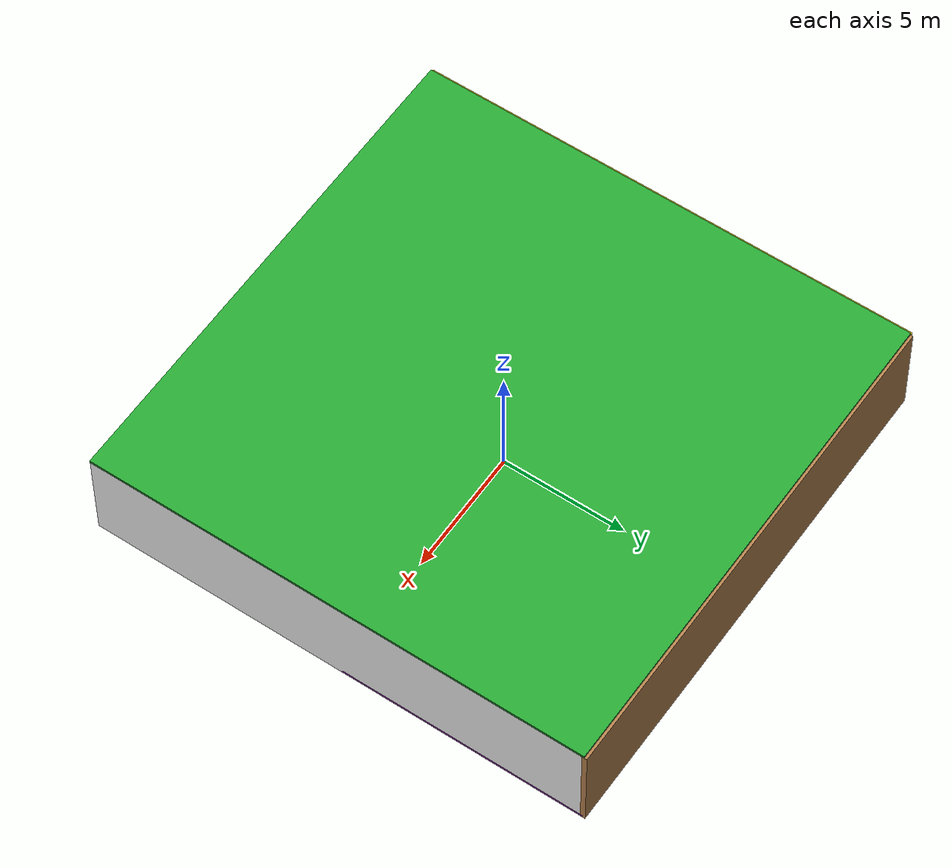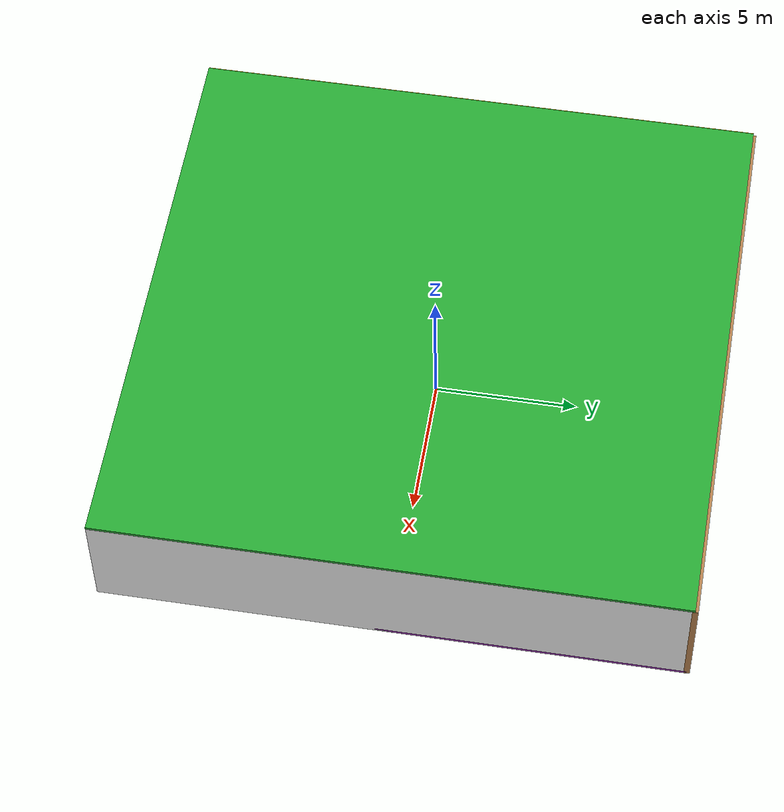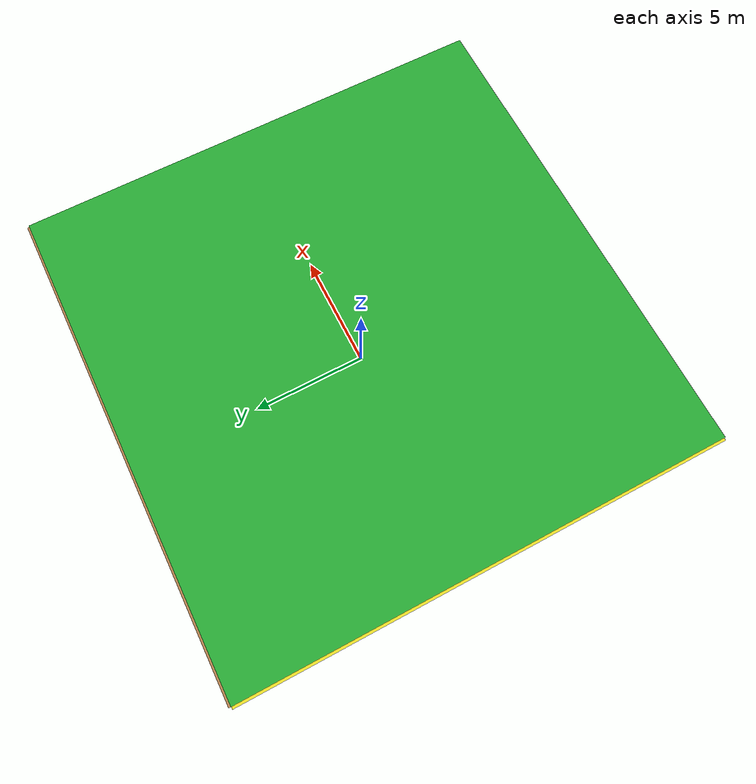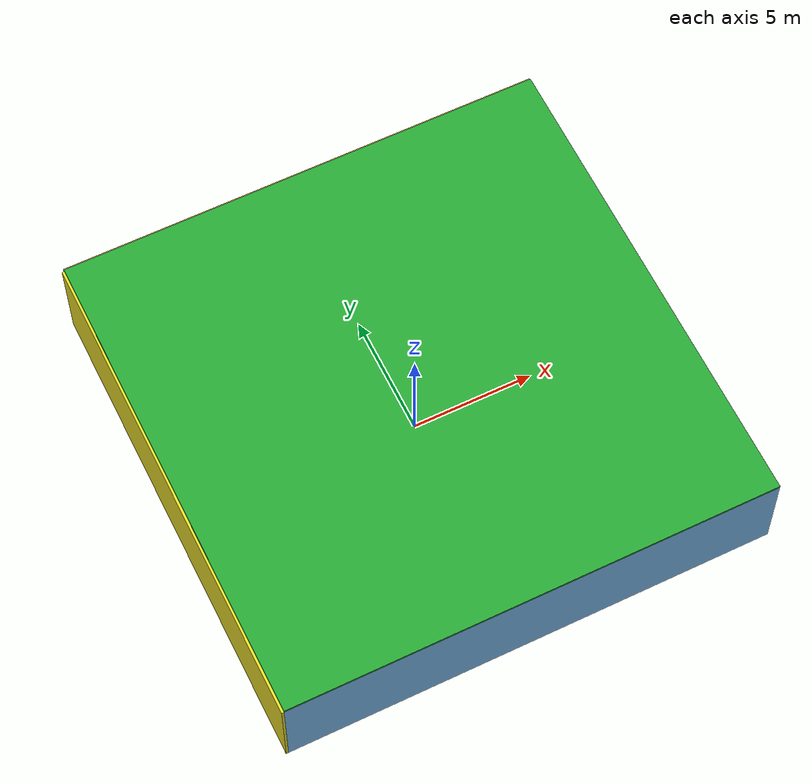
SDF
<sdf version="1.4">
 <world name="default">
  <physics type="ode">
   <max_step_size>0.001</max_step_size>
   <real_time_factor>1</real_time_factor>
   <real_time_update_rate>1000</real_time_update_rate>
   <gravity>0 0 -9.8</gravity>
  </physics>
  <scene><ambient>0.4 0.4 0.4 1</ambient><background>0.7 0.7 0.7 1</background><shadows>1</shadows></scene>
  <model name="Surrounding">
   <static>1</static>
   <link name="Ceiling">
    <collision name="Ceiling_Collision"><geometry><box><size>20 20 0.1</size></box></geometry></collision>
    <visual name="Ceiling_Visual">
     <geometry><box><size>20 20 0.1</size></box></geometry>
     <material>
      <script><uri>file://media/materials/scripts/gazebo.material</uri><name>Gazebo/GreenGlow</name></script>
     </material>
    </visual>
    <pose>0 0 4.05 0 0 0</pose>
   </link>
   <link name="Wall_South">
    <collision name="Wall_South_Collision">
     <geometry><box><size>20 0 4</size></box></geometry>
     <pose>0 0 2 0 -0 0</pose>
    </collision>
    <visual name="Wall_South_Visual">
     <pose>0 0 2 0 -0 0</pose>
     <geometry><box><size>20 0 4</size></box></geometry>
     <material>
      <script><uri>file://media/materials/scripts/gazebo.material</uri><name>Gazebo/SkyBlue</name></script>
     </material>
    </visual>
    <velocity_decay><linear>0</linear><angular>0</angular></velocity_decay>
    <pose>0 -10 0 0 -0 0</pose>
   </link>
   <link name="Wall_East">
    <collision name="Wall_21_Collision">
     <geometry><box><size>20 0 4</size></box></geometry>
     <pose>0 0 2 0 -0 0</pose>
    </collision>
    <visual name="Wall_21_Visual">
     <pose>0 0 2 0 -0 0</pose>
     <geometry><box><size>20 0 4</size></box></geometry>
     <material>
      <script><uri>file://media/materials/scripts/gazebo.material</uri><name>Gazebo/White</name></script>
     </material>
    </visual>
    <velocity_decay><linear>0</linear><angular>0</angular></velocity_decay>
    <pose>10 0 0 0 -0 1.5708</pose>
   </link>
   <link name="Wall_North">
    <collision name="Wall_22_Collision">
     <geometry><box><size>20 0.2 4</size></box></geometry>
     <pose>0 0 2 0 -0 0</pose>
    </collision>
    <visual name="Wall_22_Visual">
     <pose>0 0 2 0 -0 0</pose>
     <geometry><box><size>20 0.2 4</size></box></geometry>
     <material>
      <script><uri>file://media/materials/scripts/gazebo.material</uri><name>Gazebo/Wood</name></script>
     </material>
    </visual>
    <velocity_decay><linear>0</linear><angular>0</angular></velocity_decay>
    <pose>0 10 0 0 -0 0</pose>
   </link>
   <link name="Wall_West">
    <collision name="Wall_23_Collision">
     <geometry><box><size>20 0.2 4</size></box></geometry>
     <pose>0 0 2 0 -0 0</pose>
    </collision>
    <visual name="Wall_23_Visual">
     <pose>0 0 2 0 -0 0</pose>
     <geometry><box><size>20 0.2 4</size></box></geometry>
     <material>
      <script><uri>file://media/materials/scripts/gazebo.material</uri><name>Gazebo/YellowGlow</name></script>
     </material>
    </visual>
    <velocity_decay><linear>0</linear><angular>0</angular></velocity_decay>
    <pose>-10 0 0 0 0 -1.5708</pose>
   </link>
   <link name="Ground_link">
    <collision name="collision">
     <pose>0 0 .05 0 -0 0</pose>
     <geometry><box><size>20 20 0.1</size></box></geometry>
    </collision>
    <visual name="visual">
     <pose>0 0 .05 0 -0 0</pose>
     <geometry><box><size>20 20 0.1</size></box></geometry>
     <material>
      <script><uri>file://media/materials/scripts/gazebo.material</uri><name>Gazebo/PurpleGlow</name></script>
     </material>
    </visual>
   </link>
   <static>1</static>
  </model>
  <spherical_coordinates>
   <surface_model>EARTH_WGS84</surface_model>
   <latitude_deg>0</latitude_deg>
   <longitude_deg>0</longitude_deg>
   <elevation>0</elevation>
   <heading_deg>0</heading_deg>
  </spherical_coordinates>
  <light name="lightball_0" type="diffuse">
   <diffuse>0.8 0.8 0.8 1</diffuse>
   <specular>0.2 0.2 0.2 1</specular>
   <attenuation>
    <range>100</range>
    <constant>0.7</constant>
    <linear>0.01</linear>
    <quadratic>0.001</quadratic>
   </attenuation>
   <direction>-0.5 0.1 -0.9</direction>
   <pose>-0.957844493728 -4.91561027285 3.31309971302 0 0 0</pose>
  </light>
  <light name="lightball_1" type="diffuse">
   <diffuse>0.8 0.8 0.8 1</diffuse>
   <specular>0.2 0.2 0.2 1</specular>
   <attenuation>
    <range>100</range>
    <constant>0.7</constant>
    <linear>0.01</linear>
    <quadratic>0.001</quadratic>
   </attenuation>
   <direction>-0.5 0.1 -0.9</direction>
   <pose>-3.25808120972 7.21548155967 3.85245626215 0 0 0</pose>
  </light>
  <light name="lightball_2" type="diffuse">
   <diffuse>0.8 0.8 0.8 1</diffuse>
   <specular>0.2 0.2 0.2 1</specular>
   <attenuation>
    <range>100</range>
    <constant>0.7</constant>
    <linear>0.01</linear>
    <quadratic>0.001</quadratic>
   </attenuation>
   <direction>-0.5 0.1 -0.9</direction>
   <pose>7.75223271371 1.20187484963 1.30031713048 0 0 0</pose>
  </light>
  <light name="lightball_3" type="diffuse">
   <diffuse>0.8 0.8 0.8 1</diffuse>
   <specular>0.2 0.2 0.2 1</specular>
   <attenuation>
    <range>100</range>
    <constant>0.7</constant>
    <linear>0.01</linear>
    <quadratic>0.001</quadratic>
   </attenuation>
   <direction>-0.5 0.1 -0.9</direction>
   <pose>9.5503185197 -3.94982108028 2.73815621911 0 0 0</pose>
  </light>
  <light name="lightball_4" type="diffuse">
   <diffuse>0.8 0.8 0.8 1</diffuse>
   <specular>0.2 0.2 0.2 1</specular>
   <attenuation>
    <range>100</range>
    <constant>0.7</constant>
    <linear>0.01</linear>
    <quadratic>0.001</quadratic>
   </attenuation>
   <direction>-0.5 0.1 -0.9</direction>
   <pose>-0.821639729195 -0.781511831789 2.77321351073 0 0 0</pose>
  </light>
  <light name="lightball_5" type="diffuse">
   <diffuse>0.8 0.8 0.8 1</diffuse>
   <specular>0.2 0.2 0.2 1</specular>
   <attenuation>
    <range>100</range>
    <constant>0.7</constant>
    <linear>0.01</linear>
    <quadratic>0.001</quadratic>
   </attenuation>
   <direction>-0.5 0.1 -0.9</direction>
   <pose>-8.26289961035 -0.630311240486 2.51000493079 0 0 0</pose>
  </light>
  <light name="lightball_6" type="diffuse">
   <diffuse>0.8 0.8 0.8 1</diffuse>
   <specular>0.2 0.2 0.2 1</specular>
   <attenuation>
    <range>100</range>
    <constant>0.7</constant>
    <linear>0.01</linear>
    <quadratic>0.001</quadratic>
   </attenuation>
   <direction>-0.5 0.1 -0.9</direction>
   <pose>7.21301055181 -3.98077952947 2.70139659307 0 0 0</pose>
  </light>
  <light name="lightball_7" type="diffuse">
   <diffuse>0.8 0.8 0.8 1</diffuse>
   <specular>0.2 0.2 0.2 1</specular>
   <attenuation>
    <range>100</range>
    <constant>0.7</constant>
    <linear>0.01</linear>
    <quadratic>0.001</quadratic>
   </attenuation>
   <direction>-0.5 0.1 -0.9</direction>
   <pose>0.148700262926 4.17870063315 2.14836421238 0 0 0</pose>
  </light>
  <light name="lightball_8" type="diffuse">
   <diffuse>0.8 0.8 0.8 1</diffuse>
   <specular>0.2 0.2 0.2 1</specular>
   <attenuation>
    <range>100</range>
    <constant>0.7</constant>
    <linear>0.01</linear>
    <quadratic>0.001</quadratic>
   </attenuation>
   <direction>-0.5 0.1 -0.9</direction>
   <pose>-9.39906844285 5.46645899508 2.05873627956 0 0 0</pose>
  </light>
  <light name="lightball_9" type="diffuse">
   <diffuse>0.8 0.8 0.8 1</diffuse>
   <specular>0.2 0.2 0.2 1</specular>
   <attenuation>
    <range>100</range>
    <constant>0.7</constant>
    <linear>0.01</linear>
    <quadratic>0.001</quadratic>
   </attenuation>
   <direction>-0.5 0.1 -0.9</direction>
   <pose>9.05544034903 4.43011070645 2.64922729388 0 0 0</pose>
  </light>
  <light name="lightball_10" type="diffuse">
   <diffuse>0.8 0.8 0.8 1</diffuse>
   <specular>0.2 0.2 0.2 1</specular>
   <attenuation>
    <range>100</range>
    <constant>0.7</constant>
    <linear>0.01</linear>
    <quadratic>0.001</quadratic>
   </attenuation>
   <direction>-0.5 0.1 -0.9</direction>
   <pose>-7.5258865972 5.17464429899 2.8686417899 0 0 0</pose>
  </light>
  <light name="lightball_11" type="diffuse">
   <diffuse>0.8 0.8 0.8 1</diffuse>
   <specular>0.2 0.2 0.2 1</specular>
   <attenuation>
    <range>100</range>
    <constant>0.7</constant>
    <linear>0.01</linear>
    <quadratic>0.001</quadratic>
   </attenuation>
   <direction>-0.5 0.1 -0.9</direction>
   <pose>3.98174944304 -1.95260625644 3.70937872072 0 0 0</pose>
  </light>
  <include>
   <uri>model://construction_cone</uri>
   <pose>-6.41699143839 -3.92589302352 0 0 0 1.74496523588</pose>
  </include>
  <include><uri>model://table</uri><pose>-3.72727376993 -8.00300007422 0 0 0 2.83689866804</pose></include>
  <include>
   <uri>model://robocup_3Dsim_goal</uri>
   <pose>-3.88921510796 3.47717591128 0 0 0 1.50395836957</pose>
  </include>
  <include>
   <uri>model://construction_cone</uri>
   <pose>-2.69468309404 0.51451231308 0 0 0 0.812762872934</pose>
  </include>
  <include>
   <uri>model://robocup_3Dsim_goal</uri>
   <pose>1.65702198811 -7.17302829997 0 0 0 0.454255027716</pose>
  </include>
  <include><uri>model://cabinet</uri><pose>1.92157717699 6.49060853388 0 0 0 1.32922063546</pose></include>
  <include>
   <uri>model://construction_cone</uri>
   <pose>7.48490686305 -8.11578741207 0 0 0 0.25122301124</pose>
  </include>
  <include>
   <uri>model://robocup_3Dsim_goal</uri>
   <pose>7.20463975584 3.81098336438 0 0 0 2.57841217585</pose>
  </include>
 </world>
</sdf>

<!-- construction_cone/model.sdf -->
<sdf version="1.5">
  <model name="Construction Cone">
    <link name="link">
      <collision name="collision">
        <geometry>
          <mesh>
            <scale>10 10 10</scale>
            <uri>file://isr-testbed/construction_cone/meshes/construction_cone.dae</uri>
          </mesh>
        </geometry>
      </collision>
      <visual name="visual">
        <geometry>
          <mesh>
            <scale>10 10 10</scale>
            <uri>file://isr-testbed/construction_cone/meshes/construction_cone.dae</uri>
          </mesh>
        </geometry>
      </visual>
    </link>
  </model>
</sdf>

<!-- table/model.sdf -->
<sdf version="1.5">
  <model name="table">
    <static>true</static>
    <link name="link">
      <collision name="surface">
        <pose>0 0 1.0 0 0 0</pose>
        <geometry>
          <box>
            <size>1.5 0.8 0.03</size>
          </box>
        </geometry>
        <surface>
          <friction>
            <ode>
              <mu>0.6</mu>
              <mu2>0.6</mu2>
            </ode>
          </friction>
        </surface>
      </collision>
      <visual name="visual1">
        <pose>0 0 1.0 0 0 0</pose>
        <geometry>
          <box>
            <size>1.5 0.8 0.03</size>
          </box>
        </geometry>
        <material>
          <script>
            <uri>model://media/materials/scripts/gazebo.material</uri>
            <name>Gazebo/Wood</name>
          </script>
        </material>
      </visual>
      <collision name="front_left_leg">
        <pose>0.68 0.38 0.5 0 0 0</pose>
        <geometry>
          <cylinder>
            <radius>0.02</radius>
            <length>1.0</length>
          </cylinder>
        </geometry>
      </collision>
      <visual name="front_left_leg">
        <pose>0.68 0.38 0.5 0 0 0</pose>
        <geometry>
          <cylinder>
            <radius>0.02</radius>
            <length>1.0</length>
          </cylinder>
        </geometry>
        <material>
          <script>
            <uri>model://media/materials/scripts/gazebo.material</uri>
            <name>Gazebo/Grey</name>
          </script>
        </material>
      </visual>
      <collision name="front_right_leg">
        <pose>0.68 -0.38 0.5 0 0 0</pose>
        <geometry>
          <cylinder>
            <radius>0.02</radius>
            <length>1.0</length>
          </cylinder>
        </geometry>
      </collision>
      <visual name="front_right_leg">
        <pose>0.68 -0.38 0.5 0 0 0</pose>
        <geometry>
          <cylinder>
            <radius>0.02</radius>
            <length>1.0</length>
          </cylinder>
        </geometry>
        <material>
          <script>
            <uri>model://media/materials/scripts/gazebo.material</uri>
            <name>Gazebo/Grey</name>
          </script>
        </material>
      </visual>
      <collision name="back_right_leg">
        <pose>-0.68 -0.38 0.5 0 0 0</pose>
        <geometry>
          <cylinder>
            <radius>0.02</radius>
            <length>1.0</length>
          </cylinder>
        </geometry>
      </collision>
      <visual name="back_right_leg">
        <pose>-0.68 -0.38 0.5 0 0 0</pose>
        <geometry>
          <cylinder>
            <radius>0.02</radius>
            <length>1.0</length>
          </cylinder>
        </geometry>
        <material>
          <script>
            <uri>model://media/materials/scripts/gazebo.material</uri>
            <name>Gazebo/Grey</name>
          </script>
        </material>
      </visual>
      <collision name="back_left_leg">
        <pose>-0.68 0.38 0.5 0 0 0</pose>
        <geometry>
          <cylinder>
            <radius>0.02</radius>
            <length>1.0</length>
          </cylinder>
        </geometry>
      </collision>
      <visual name="back_left_leg">
        <pose>-0.68 0.38 0.5 0 0 0</pose>
        <geometry>
          <cylinder>
            <radius>0.02</radius>
            <length>1.0</length>
          </cylinder>
        </geometry>
        <material>
          <script>
            <uri>model://media/materials/scripts/gazebo.material</uri>
            <name>Gazebo/Grey</name>
          </script>
        </material>
      </visual>
    </link>
  </model>
</sdf>

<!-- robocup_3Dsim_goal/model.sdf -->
<sdf version="1.5">
  <model name="robocup_3d_goal">
    <static>true</static>
    <link name="left_post">
      <pose>0 1.05 0.45 0 0 0</pose>
      <collision name="collision">
        <geometry>
          <cylinder>
            <radius>0.05</radius>
            <length>0.9</length>
          </cylinder>
        </geometry>
      </collision>
      <visual name="visual">
        <geometry>
          <cylinder>
            <radius>0.05</radius>
            <length>0.9</length>
          </cylinder>
        </geometry>
        <material>
          <script>
            <uri>file://media/materials/scripts/gazebo.material</uri>
            <name>Gazebo/ZincYellow</name>
          </script>
        </material>
      </visual>
    </link>
    <link name="left_support_horiz_lower">
      <pose>0.30 1.05 0.01 0 0 0</pose>
      <collision name="collision">
        <geometry>
          <box>
            <size>0.50 0.02 0.02</size>
          </box>
        </geometry>
      </collision>
      <visual name="visual">
        <geometry>
          <box>
            <size>0.50 0.02 0.02</size>
          </box>
        </geometry>
        <material>
          <script>
            <uri>file://media/materials/scripts/gazebo.material</uri>
            <name>Gazebo/White</name>
          </script>
        </material>
      </visual>
    </link>
    <link name="left_support_horiz_upper">
      <pose>0.30 1.05 0.79 0 0 0</pose>
      <collision name="collision">
        <geometry>
          <box>
            <size>0.50 0.02 0.02</size>
          </box>
        </geometry>
      </collision>
      <visual name="visual">
        <geometry>
          <box>
            <size>0.50 0.02 0.02</size>
          </box>
        </geometry>
        <material>
          <script>
            <uri>file://media/materials/scripts/gazebo.material</uri>
            <name>Gazebo/White</name>
          </script>
        </material>
      </visual>
    </link>
    <link name="left_support_vertical">
      <pose>0.56 1.05 0.4 0 1.5708 0</pose>
      <collision name="collision">
        <geometry>
          <box>
            <size>0.80 0.02 0.02</size>
          </box>
        </geometry>
      </collision>
      <visual name="visual">
        <geometry>
          <box>
            <size>0.80 0.02 0.02</size>
          </box>
        </geometry>
        <material>
          <script>
            <uri>file://media/materials/scripts/gazebo.material</uri>
            <name>Gazebo/White</name>
          </script>
        </material>
      </visual>
    </link>
    <link name="right_support_horiz_lower">
      <pose>0.30 -1.05 0.01 0 0 0</pose>
      <collision name="collision">
        <geometry>
          <box>
            <size>0.50 0.02 0.02</size>
          </box>
        </geometry>
      </collision>
      <visual name="visual">
        <geometry>
          <box>
            <size>0.50 0.02 0.02</size>
          </box>
        </geometry>
        <material>
          <script>
            <uri>file://media/materials/scripts/gazebo.material</uri>
            <name>Gazebo/White</name>
          </script>
        </material>
      </visual>
    </link>
    <link name="right_support_horiz_upper">
      <pose>0.30 -1.05 0.79 0 0 0</pose>
      <collision name="collision">
        <geometry>
          <box>
            <size>0.50 0.02 0.02</size>
          </box>
        </geometry>
      </collision>
      <visual name="visual">
        <geometry>
          <box>
            <size>0.50 0.02 0.02</size>
          </box>
        </geometry>
        <material>
          <script>
            <uri>file://media/materials/scripts/gazebo.material</uri>
            <name>Gazebo/White</name>
          </script>
        </material>
      </visual>
    </link>
    <link name="right_support_vertical">
      <pose>0.56 -1.05 0.4 0 1.5708 0</pose>
      <collision name="collision">
        <geometry>
          <box>
            <size>0.80 0.02 0.02</size>
          </box>
        </geometry>
      </collision>
      <visual name="visual">
        <geometry>
          <box>
            <size>0.80 0.02 0.02</size>
          </box>
        </geometry>
        <material>
          <script>
            <uri>file://media/materials/scripts/gazebo.material</uri>
            <name>Gazebo/White</name>
          </script>
        </material>
      </visual>
    </link>
    <link name="center_support_horiz_lower">
      <pose>0.56 0 0.01 0 1.5708 0</pose>
      <collision name="collision">
        <geometry>
          <box>
            <size>0.02 2.08 0.02</size>
          </box>
        </geometry>
      </collision>
      <visual name="visual">
        <geometry>
          <box>
            <size>0.02 2.08 0.02</size>
          </box>
        </geometry>
        <material>
          <script>
            <uri>file://media/materials/scripts/gazebo.material</uri>
            <name>Gazebo/White</name>
          </script>
        </material>
      </visual>
    </link>
    <link name="center_support_horiz_upper">
      <pose>0.56 0 0.79 0 1.5708 0</pose>
      <collision name="collision">
        <geometry>
          <box>
            <size>0.02 2.08 0.02</size>
          </box>
        </geometry>
      </collision>
      <visual name="visual">
        <geometry>
          <box>
            <size>0.02 2.08 0.02</size>
          </box>
        </geometry>
        <material>
          <script>
            <uri>file://media/materials/scripts/gazebo.material</uri>
            <name>Gazebo/White</name>
          </script>
        </material>
      </visual>
    </link>
    <link name="right_post">
      <pose>0 -1.05 0.45 0 0 0</pose>
      <collision name="collision">
        <geometry>
          <cylinder>
            <radius>0.05</radius>
            <length>0.9</length>
          </cylinder>
        </geometry>
      </collision>
      <visual name="visual">
        <geometry>
          <cylinder>
            <radius>0.05</radius>
            <length>0.9</length>
          </cylinder>
        </geometry>
        <material>
          <script>
            <uri>file://media/materials/scripts/gazebo.material</uri>
            <name>Gazebo/ZincYellow</name>
          </script>
        </material>
      </visual>
    </link>
    <link name="crossbar">
      <pose>0 0 0.85 1.57 1.57 0</pose>
      <collision name="collision">
        <geometry>
          <cylinder>
            <radius>0.05</radius>
            <length>2.0</length>
          </cylinder>
        </geometry>
      </collision>
      <visual name="visual">
        <geometry>
          <cylinder>
            <radius>0.05</radius>
            <length>2.0</length>
          </cylinder>
        </geometry>
        <material>
          <script>
            <uri>file://media/materials/scripts/gazebo.material</uri>
            <name>Gazebo/ZincYellow</name>
          </script>
        </material>
      </visual>
    </link>
    <link name="center_net">
      <pose>0.56 0 0.40 0 0 0</pose>
      <collision name="collision">
        <geometry>
          <box>
            <size>0.01 2.1 0.80</size>
          </box>
        </geometry>
      </collision>
      <visual name="visual">
        <geometry>
          <box>
            <size>0.01 2.1 0.80</size>
          </box>
        </geometry>
        <material>
          <script>
            <uri>model://../model_source/models/robocup09_spl_field/materials/scripts/</uri>
            <uri>model://../model_source/models/robocup09_spl_field/materials/textures/</uri>
            <name>RoboCup/Net</name>
          </script>
        </material>
      </visual>
    </link>
    <link name="left_net">
      <pose>0.30 1.05 0.40 0 0 0</pose>
      <collision name="collision">
        <geometry>
          <box>
            <size>0.50 0.01 0.76</size>
          </box>
        </geometry>
      </collision>
      <visual name="visual">
        <geometry>
          <box>
            <size>0.50 0.01 0.76</size>
          </box>
        </geometry>
        <material>
          <script>
            <uri>model://../model_source/models/robocup09_spl_field/materials/scripts/</uri>
            <uri>model://../model_source/models/robocup09_spl_field/materials/textures/</uri>
            <name>RoboCup/Net</name>
          </script>
        </material>
      </visual>
    </link>
    <link name="right_net">
      <pose>0.30 -1.05 0.40 0 0 0</pose>
      <collision name="collision">
        <geometry>
          <box>
            <size>0.50 0.01 0.76</size>
          </box>
        </geometry>
      </collision>
      <visual name="visual">
        <geometry>
          <box>
            <size>0.50 0.01 0.76</size>
          </box>
        </geometry>
        <material>
          <script>
            <uri>model://../model_source/models/robocup09_spl_field/materials/scripts/</uri>
            <uri>model://../model_source/models/robocup09_spl_field/materials/textures/</uri>
            <name>RoboCup/Net</name>
          </script>
        </material>
      </visual>
    </link>
  </model>
</sdf>

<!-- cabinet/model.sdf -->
<sdf version="1.5">
  <model name="cabinet">
    <static>true</static>
    <link name="cabinet_bottom_plate">
      <inertial>
        <pose>0 0 -1 0 0 0</pose>
        <inertia>
          <ixx>2.050000</ixx>
          <ixy>0</ixy>
          <ixz>0</ixz>
          <iyy>2.050000</iyy>
          <iyz>0</iyz>
          <izz>2.050000</izz>
        </inertia>
        <mass>25.000000</mass>
      </inertial>
      <collision name="cabinet_bottom_plate_geom">
        <pose>0 0 0.010000 0 0 0</pose>
        <geometry>
          <box>
            <size>0.450000 0.450000 0.020000</size>
          </box>
        </geometry>
      </collision>
      <visual name="cabinet_bottom_plate_geom_visual">
        <pose>0 0 0.010000 0 0 0</pose>
        <geometry>
          <box>
            <size>0.450000 0.450000 0.020000</size>
          </box>
        </geometry>
        <material>
          <script>
            <uri>model://media/materials/scripts/gazebo.material</uri>
            <name>Gazebo/Wood</name>
          </script>
        </material>
      </visual>
      <collision name="cabinet_bottom_plate_geom_cabinet_back_plate">
        <pose>0.235000 0 0.510000 0 0 0</pose>
        <geometry>
          <box>
            <size>0.020000 0.450000 1.020000</size>
          </box>
        </geometry>
      </collision>
      <visual name="cabinet_bottom_plate_geom_cabinet_back_plate_visual">
        <pose>0.235000 0 0.510000 0 0 0</pose>
        <geometry>
          <box>
            <size>0.020000 0.450000 1.020000</size>
          </box>
        </geometry>
        <material>
          <script>
            <uri>model://media/materials/scripts/gazebo.material</uri>
            <name>Gazebo/Wood</name>
          </script>
        </material>
      </visual>
      <collision name="cabinet_bottom_plate_geom_cabinet_left_plate">
        <pose>0 0.235000 0.510000 0 0 0</pose>
        <geometry>
          <box>
            <size>0.450000 0.020000 1.020000</size>
          </box>
        </geometry>
      </collision>
      <visual name="cabinet_bottom_plate_geom_cabinet_left_plate_visual">
        <pose>0 0.235000 0.510000 0 0 0</pose>
        <geometry>
          <box>
            <size>0.450000 0.020000 1.020000</size>
          </box>
        </geometry>
        <material>
          <script>
            <uri>model://media/materials/scripts/gazebo.material</uri>
            <name>Gazebo/Wood</name>
          </script>
        </material>
      </visual>
      <collision name="cabinet_bottom_plate_geom_cabinet_middle_plate">
        <pose>0 0 0.510000 0 0 0</pose>
        <geometry>
          <box>
            <size>0.450000 0.450000 0.020000</size>
          </box>
        </geometry>
      </collision>
      <visual name="cabinet_bottom_plate_geom_cabinet_middle_plate_visual">
        <pose>0 0 0.510000 0 0 0</pose>
        <geometry>
          <box>
            <size>0.450000 0.450000 0.020000</size>
          </box>
        </geometry>
        <material>
          <script>
            <uri>model://media/materials/scripts/gazebo.material</uri>
            <name>Gazebo/Wood</name>
          </script>
        </material>
      </visual>
      <collision name="cabinet_bottom_plate_geom_cabinet_right_plate">
        <pose>0 -0.235000 0.510000 0 0 0</pose>
        <geometry>
          <box>
            <size>0.450000 0.020000 1.020000</size>
          </box>
        </geometry>
      </collision>
      <visual name="cabinet_bottom_plate_geom_cabinet_right_plate_visual">
        <pose>0 -0.235000 0.510000 0 0 0</pose>
        <geometry>
          <box>
            <size>0.450000 0.020000 1.020000</size>
          </box>
        </geometry>
        <material>
          <script>
            <uri>model://media/materials/scripts/gazebo.material</uri>
            <name>Gazebo/Wood</name>
          </script>
        </material>
      </visual>
      <collision name="cabinet_bottom_plate_geom_cabinet_top_plate">
        <pose>0 0 1.010000 0 0 0</pose>
        <geometry>
          <box>
            <size>0.450000 0.450000 0.020000</size>
          </box>
        </geometry>
      </collision>
      <visual name="cabinet_bottom_plate_geom_cabinet_top_plate_visual">
        <pose>0 0 1.010000 0 0 0</pose>
        <geometry>
          <box>
            <size>0.450000 0.450000 0.020000</size>
          </box>
        </geometry>
        <material>
          <script>
            <uri>model://media/materials/scripts/gazebo.material</uri>
            <name>Gazebo/Wood</name>
          </script>
        </material>
      </visual>
    </link>
  </model>
</sdf>
